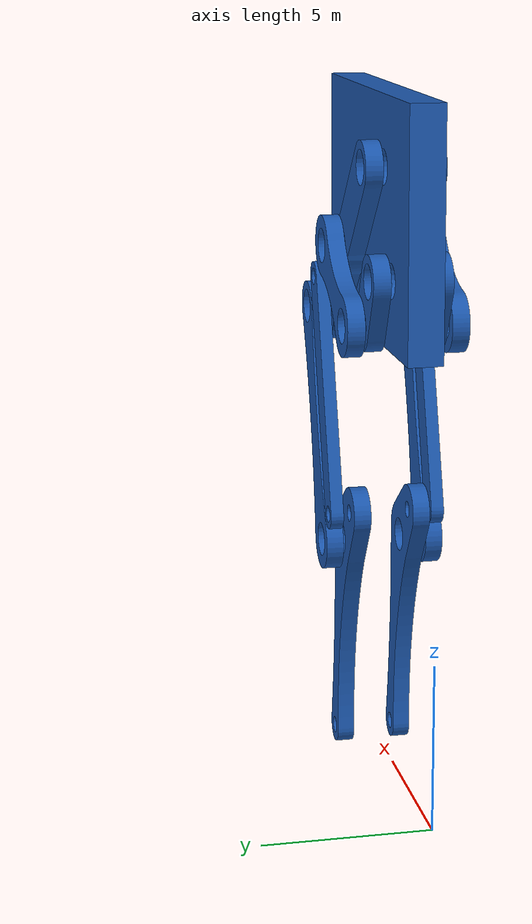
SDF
<?xml version='1.0'?>
<sdf version='1.6'>
  <world name='model'>
    <gravity>0 0 -9.8</gravity>
  <model name='oswald'>
    <link name='body'>
      <inertial>
        <mass>1</mass>
        <inertia>
          <ixx>0.166667</ixx>
          <ixy>0</ixy>
          <ixz>0</ixz>
          <iyy>0.166667</iyy>
          <iyz>0</iyz>
          <izz>0.166667</izz>
        </inertia>
        <pose frame=''>0 0 0 0 -0 0</pose>
      </inertial>
      <pose frame=''>-0.020683 -0.029068 0 0 -0 0</pose>
      <gravity>1</gravity>
      <self_collide>0</self_collide>
      <kinematic>0</kinematic>
      <enable_wind>0</enable_wind>
      <visual name='visual'>
        <pose frame=''>0 0 0 0 -0 0</pose>
        <geometry>
          <mesh>
            <uri>oswald_description/meshes/base_link.stl</uri>
            <scale>1 1 1</scale>
          </mesh>
        </geometry>
        <material>
          <ambient>1 0 0 1</ambient>
          <diffuse>0.109800 0.349000 0.694100 1</diffuse>
          <specular>0.1 0.1 0.1 1</specular>
          <emissive>0 0 0 0</emissive>
         </material>
        <transparency>0</transparency>
        <cast_shadows>1</cast_shadows>
      </visual>
      <collision name='collision'>
        <pose frame=''>0 0 0 0 -0 0</pose>
        <geometry>
          <mesh>
            <uri>oswald_description/meshes/base_link.stl</uri>
            <scale>1 1 1</scale>
          </mesh>
        </geometry>
        <surface>
          <friction>
            <torsional>
              <coefficient>1</coefficient>
              <patch_radius>0</patch_radius>
              <surface_radius>0</surface_radius>
              <use_patch_radius>1</use_patch_radius>
            </torsional>
          </friction>
          <bounce>
            <restitution_coefficient>0</restitution_coefficient>
            <threshold>1e+06</threshold>
          </bounce>
          <contact>
            <collide_without_contact>0</collide_without_contact>
            <collide_without_contact_bitmask>1</collide_without_contact_bitmask>
            <collide_bitmask>1</collide_bitmask>
          </contact>
        </surface>
      </collision>
    </link>
    <link name='right_connector'>
      <inertial>
        <mass>1</mass>
        <inertia>
          <ixx>0.166667</ixx>
          <ixy>0</ixy>
          <ixz>0</ixz>
          <iyy>0.166667</iyy>
          <iyz>0</iyz>
          <izz>0.166667</izz>
        </inertia>
        <pose frame=''>0 0 0 0 -0 0</pose>
      </inertial>
      <pose frame=''>0 0 0 0 -0 0</pose>
      <gravity>1</gravity>
      <self_collide>0</self_collide>
      <kinematic>0</kinematic>
      <enable_wind>0</enable_wind>
      <visual name='visual'>
        <pose frame=''>0 0 0 0 -0 0</pose>
        <geometry>
          <mesh>
            <uri>oswald_description/meshes/connector.stl</uri>
            <scale>1 1 1</scale>
          </mesh>
        </geometry>
        <material>
          <ambient>1 0 0 1</ambient>
          <diffuse>0.109800 0.349000 0.694100 1</diffuse>
          <specular>0.1 0.1 0.1 1</specular>
          <emissive>0 0 0 0</emissive>
         </material>
        <transparency>0</transparency>
        <cast_shadows>1</cast_shadows>
      </visual>
      <collision name='collision'>
        <pose frame=''>0 0 0 0 -0 0</pose>
        <geometry>
          <mesh>
            <uri>oswald_description/meshes/connector.stl</uri>
            <scale>1 1 1</scale>
          </mesh>
        </geometry>
        <surface>
          <friction>
            <torsional>
              <coefficient>1</coefficient>
              <patch_radius>0</patch_radius>
              <surface_radius>0</surface_radius>
              <use_patch_radius>1</use_patch_radius>
            </torsional>
          </friction>
          <bounce>
            <restitution_coefficient>0</restitution_coefficient>
            <threshold>1e+06</threshold>
          </bounce>
          <contact>
            <collide_without_contact>0</collide_without_contact>
            <collide_without_contact_bitmask>1</collide_without_contact_bitmask>
            <collide_bitmask>1</collide_bitmask>
          </contact>
        </surface>
      </collision>
    </link>
    <link name='left_recip'>
      <inertial>
        <mass>1</mass>
        <inertia>
          <ixx>0.166667</ixx>
          <ixy>0</ixy>
          <ixz>0</ixz>
          <iyy>0.166667</iyy>
          <iyz>0</iyz>
          <izz>0.166667</izz>
        </inertia>
        <pose frame=''>0 0 0 0 -0 0</pose>
      </inertial>
      <pose frame=''>0 1.75 0 0 -0 0</pose>
      <gravity>1</gravity>
      <self_collide>0</self_collide>
      <kinematic>0</kinematic>
      <enable_wind>0</enable_wind>
      <visual name='visual'>
        <pose frame=''>0 0 0 0 -0 0</pose>
        <geometry>
          <mesh>
            <uri>oswald_description/meshes/recip.stl</uri>
            <scale>1 1 1</scale>
          </mesh>
        </geometry>
        <material>
          <ambient>1 0 0 1</ambient>
          <diffuse>0.109800 0.349000 0.694100 1</diffuse>
          <specular>0.1 0.1 0.1 1</specular>
          <emissive>0 0 0 0</emissive>
         </material>
        <transparency>0</transparency>
        <cast_shadows>1</cast_shadows>
      </visual>
      <collision name='collision'>
        <pose frame=''>0 0 0 0 -0 0</pose>
        <geometry>
          <mesh>
            <uri>oswald_description/meshes/recip.stl</uri>
            <scale>1 1 1</scale>
          </mesh>
        </geometry>
        <surface>
          <friction>
            <torsional>
              <coefficient>1</coefficient>
              <patch_radius>0</patch_radius>
              <surface_radius>0</surface_radius>
              <use_patch_radius>1</use_patch_radius>
            </torsional>
          </friction>
          <bounce>
            <restitution_coefficient>0</restitution_coefficient>
            <threshold>1e+06</threshold>
          </bounce>
          <contact>
            <collide_without_contact>0</collide_without_contact>
            <collide_without_contact_bitmask>1</collide_without_contact_bitmask>
            <collide_bitmask>1</collide_bitmask>
          </contact>
        </surface>
      </collision>
    </link>
    <link name='left_shin'>
      <inertial>
        <mass>1</mass>
        <inertia>
          <ixx>0.166667</ixx>
          <ixy>0</ixy>
          <ixz>0</ixz>
          <iyy>0.166667</iyy>
          <iyz>0</iyz>
          <izz>0.166667</izz>
        </inertia>
        <pose frame=''>0 0 0 0 -0 0</pose>
      </inertial>
      <pose frame=''>0 3 0 0 -0 0</pose>
      <gravity>1</gravity>
      <self_collide>0</self_collide>
      <kinematic>0</kinematic>
      <enable_wind>0</enable_wind>
      <visual name='visual'>
        <pose frame=''>0 0 0 0 -0 0</pose>
        <geometry>
          <mesh>
            <uri>oswald_description/meshes/shin.stl</uri>
            <scale>1 1 1</scale>
          </mesh>
        </geometry>
        <material>
          <ambient>1 0 0 1</ambient>
          <diffuse>0.109800 0.349000 0.694100 1</diffuse>
          <specular>0.1 0.1 0.1 1</specular>
          <emissive>0 0 0 0</emissive>
         </material>
        <transparency>0</transparency>
        <cast_shadows>1</cast_shadows>
      </visual>
      <collision name='collision'>
        <pose frame=''>0 0 0 0 -0 0</pose>
        <geometry>
          <mesh>
            <uri>oswald_description/meshes/shin.stl</uri>
            <scale>1 1 1</scale>
          </mesh>
        </geometry>
        <surface>
          <friction>
            <torsional>
              <coefficient>1</coefficient>
              <patch_radius>0</patch_radius>
              <surface_radius>0</surface_radius>
              <use_patch_radius>1</use_patch_radius>
            </torsional>
          </friction>
          <bounce>
            <restitution_coefficient>0</restitution_coefficient>
            <threshold>1e+06</threshold>
          </bounce>
          <contact>
            <collide_without_contact>0</collide_without_contact>
            <collide_without_contact_bitmask>1</collide_without_contact_bitmask>
            <collide_bitmask>1</collide_bitmask>
          </contact>
        </surface>
      </collision>
    </link>
    <link name='right_recip'>
      <inertial>
        <mass>1</mass>
        <inertia>
          <ixx>0.166667</ixx>
          <ixy>0</ixy>
          <ixz>0</ixz>
          <iyy>0.166667</iyy>
          <iyz>0</iyz>
          <izz>0.166667</izz>
        </inertia>
        <pose frame=''>0 0 0 0 -0 0</pose>
      </inertial>
      <pose frame=''>0 0 0 0 -0 0</pose>
      <gravity>1</gravity>
      <self_collide>0</self_collide>
      <kinematic>0</kinematic>
      <enable_wind>0</enable_wind>
      <visual name='visual'>
        <pose frame=''>0 0 0 0 -0 0</pose>
        <geometry>
          <mesh>
            <uri>oswald_description/meshes/recip.stl</uri>
            <scale>1 1 1</scale>
          </mesh>
        </geometry>
        <material>
          <ambient>1 0 0 1</ambient>
          <diffuse>0.109800 0.349000 0.694100 1</diffuse>
          <specular>0.1 0.1 0.1 1</specular>
          <emissive>0 0 0 0</emissive>
         </material>
        <transparency>0</transparency>
        <cast_shadows>1</cast_shadows>
      </visual>
      <collision name='collision'>
        <pose frame=''>0 0 0 0 -0 0</pose>
        <geometry>
          <mesh>
            <uri>oswald_description/meshes/recip.stl</uri>
            <scale>1 1 1</scale>
          </mesh>
        </geometry>
        <surface>
          <friction>
            <torsional>
              <coefficient>1</coefficient>
              <patch_radius>0</patch_radius>
              <surface_radius>0</surface_radius>
              <use_patch_radius>1</use_patch_radius>
            </torsional>
          </friction>
          <bounce>
            <restitution_coefficient>0</restitution_coefficient>
            <threshold>1e+06</threshold>
          </bounce>
          <contact>
            <collide_without_contact>0</collide_without_contact>
            <collide_without_contact_bitmask>1</collide_without_contact_bitmask>
            <collide_bitmask>1</collide_bitmask>
          </contact>
        </surface>
      </collision>
    </link>
    <link name='right_thigh'>
      <inertial>
        <mass>1</mass>
        <inertia>
          <ixx>0.166667</ixx>
          <ixy>0</ixy>
          <ixz>0</ixz>
          <iyy>0.166667</iyy>
          <iyz>0</iyz>
          <izz>0.166667</izz>
        </inertia>
        <pose frame=''>0 0 0 0 -0 0</pose>
      </inertial>
      <pose frame=''>-0.020683 -0.029068 0 0 -0 0</pose>
      <gravity>1</gravity>
      <self_collide>0</self_collide>
      <kinematic>0</kinematic>
      <enable_wind>0</enable_wind>
      <visual name='visual'>
        <pose frame=''>0 0 0 0 -0 0</pose>
        <geometry>
          <mesh>
            <uri>oswald_description/meshes/thigh.stl</uri>
            <scale>1 1 1</scale>
          </mesh>
        </geometry>
        <material>
          <ambient>1 0 0 1</ambient>
          <diffuse>0.109800 0.349000 0.694100 1</diffuse>
          <specular>0.1 0.1 0.1 1</specular>
          <emissive>0 0 0 0</emissive>
         </material>
        <transparency>0</transparency>
        <cast_shadows>1</cast_shadows>
      </visual>
      <collision name='collision'>
        <pose frame=''>0 0 0 0 -0 0</pose>
        <geometry>
          <mesh>
            <uri>oswald_description/meshes/thigh.stl</uri>
            <scale>1 1 1</scale>
          </mesh>
        </geometry>
        <surface>
          <friction>
            <torsional>
              <coefficient>1</coefficient>
              <patch_radius>0</patch_radius>
              <surface_radius>0</surface_radius>
              <use_patch_radius>1</use_patch_radius>
            </torsional>
          </friction>
          <bounce>
            <restitution_coefficient>0</restitution_coefficient>
            <threshold>1e+06</threshold>
          </bounce>
          <contact>
            <collide_without_contact>0</collide_without_contact>
            <collide_without_contact_bitmask>1</collide_without_contact_bitmask>
            <collide_bitmask>1</collide_bitmask>
          </contact>
        </surface>
      </collision>
    </link>
    <link name='left_connector'>
      <inertial>
        <mass>1</mass>
        <inertia>
          <ixx>0.166667</ixx>
          <ixy>0</ixy>
          <ixz>0</ixz>
          <iyy>0.166667</iyy>
          <iyz>0</iyz>
          <izz>0.166667</izz>
        </inertia>
        <pose frame=''>0 0 0 0 -0 0</pose>
      </inertial>
      <pose frame=''>-0.020683 2.97093 0 0 -0 0</pose>
      <gravity>1</gravity>
      <self_collide>0</self_collide>
      <kinematic>0</kinematic>
      <enable_wind>0</enable_wind>
      <visual name='visual'>
        <pose frame=''>0 0 0 0 -0 0</pose>
        <geometry>
          <mesh>
            <uri>oswald_description/meshes/connector.stl</uri>
            <scale>1 1 1</scale>
          </mesh>
        </geometry>
        <material>
          <ambient>1 0 0 1</ambient>
          <diffuse>0.109800 0.349000 0.694100 1</diffuse>
          <specular>0.1 0.1 0.1 1</specular>
          <emissive>0 0 0 0</emissive>
         </material>
        <transparency>0</transparency>
        <cast_shadows>1</cast_shadows>
      </visual>
      <collision name='collision'>
        <pose frame=''>0 0 0 0 -0 0</pose>
        <geometry>
          <mesh>
            <uri>oswald_description/meshes/connector.stl</uri>
            <scale>1 1 1</scale>
          </mesh>
        </geometry>
        <surface>
          <friction>
            <torsional>
              <coefficient>1</coefficient>
              <patch_radius>0</patch_radius>
              <surface_radius>0</surface_radius>
              <use_patch_radius>1</use_patch_radius>
            </torsional>
          </friction>
          <bounce>
            <restitution_coefficient>0</restitution_coefficient>
            <threshold>1e+06</threshold>
          </bounce>
          <contact>
            <collide_without_contact>0</collide_without_contact>
            <collide_without_contact_bitmask>1</collide_without_contact_bitmask>
            <collide_bitmask>1</collide_bitmask>
          </contact>
        </surface>
      </collision>
    </link>
    <link name='left_4bar'>
      <inertial>
        <mass>1</mass>
        <inertia>
          <ixx>0.166667</ixx>
          <ixy>0</ixy>
          <ixz>0</ixz>
          <iyy>0.166667</iyy>
          <iyz>0</iyz>
          <izz>0.166667</izz>
        </inertia>
        <pose frame=''>0 0 0 0 -0 0</pose>
      </inertial>
      <pose frame=''>0 3 0 0 -0 0</pose>
      <gravity>1</gravity>
      <self_collide>0</self_collide>
      <kinematic>0</kinematic>
      <enable_wind>0</enable_wind>
      <visual name='visual'>
        <pose frame=''>0 0 0 0 -0 0</pose>
        <geometry>
          <mesh>
            <uri>oswald_description/meshes/4bar.stl</uri>
            <scale>1 1 1</scale>
          </mesh>
        </geometry>
        <material>
          <ambient>1 0 0 1</ambient>
          <diffuse>0.109800 0.349000 0.694100 1</diffuse>
          <specular>0.1 0.1 0.1 1</specular>
          <emissive>0 0 0 0</emissive>
         </material>
        <transparency>0</transparency>
        <cast_shadows>1</cast_shadows>
      </visual>
      <collision name='collision'>
        <pose frame=''>0 0 0 0 -0 0</pose>
        <geometry>
          <mesh>
            <uri>oswald_description/meshes/4bar.stl</uri>
            <scale>1 1 1</scale>
          </mesh>
        </geometry>
        <surface>
          <friction>
            <torsional>
              <coefficient>1</coefficient>
              <patch_radius>0</patch_radius>
              <surface_radius>0</surface_radius>
              <use_patch_radius>1</use_patch_radius>
            </torsional>
          </friction>
          <bounce>
            <restitution_coefficient>0</restitution_coefficient>
            <threshold>1e+06</threshold>
          </bounce>
          <contact>
            <collide_without_contact>0</collide_without_contact>
            <collide_without_contact_bitmask>1</collide_without_contact_bitmask>
            <collide_bitmask>1</collide_bitmask>
          </contact>
        </surface>
      </collision>
    </link>
    <link name='right_shin'>
      <inertial>
        <mass>1</mass>
        <inertia>
          <ixx>0.166667</ixx>
          <ixy>0</ixy>
          <ixz>0</ixz>
          <iyy>0.166667</iyy>
          <iyz>0</iyz>
          <izz>0.166667</izz>
        </inertia>
        <pose frame=''>0 0 0 0 -0 0</pose>
      </inertial>
      <pose frame=''>0 0 0 0 -0 0</pose>
      <gravity>1</gravity>
      <self_collide>0</self_collide>
      <kinematic>0</kinematic>
      <enable_wind>0</enable_wind>
      <visual name='visual'>
        <pose frame=''>0 0 0 0 -0 0</pose>
        <geometry>
          <mesh>
            <uri>oswald_description/meshes/shin.stl</uri>
            <scale>1 1 1</scale>
          </mesh>
        </geometry>
        <material>
          <ambient>1 0 0 1</ambient>
          <diffuse>0.109800 0.349000 0.694100 1</diffuse>
          <specular>0.1 0.1 0.1 1</specular>
          <emissive>0 0 0 0</emissive>
         </material>
        <transparency>0</transparency>
        <cast_shadows>1</cast_shadows>
      </visual>
      <collision name='collision'>
        <pose frame=''>0 0 0 0 -0 0</pose>
        <geometry>
          <mesh>
            <uri>oswald_description/meshes/shin.stl</uri>
            <scale>1 1 1</scale>
          </mesh>
        </geometry>
        <surface>
          <friction>
            <torsional>
              <coefficient>1</coefficient>
              <patch_radius>0</patch_radius>
              <surface_radius>0</surface_radius>
              <use_patch_radius>1</use_patch_radius>
            </torsional>
          </friction>
          <bounce>
            <restitution_coefficient>0</restitution_coefficient>
            <threshold>1e+06</threshold>
          </bounce>
          <contact>
            <collide_without_contact>0</collide_without_contact>
            <collide_without_contact_bitmask>1</collide_without_contact_bitmask>
            <collide_bitmask>1</collide_bitmask>
          </contact>
        </surface>
      </collision>
    </link>
    <link name='left_thigh'>
      <inertial>
        <mass>1</mass>
        <inertia>
          <ixx>0.166667</ixx>
          <ixy>0</ixy>
          <ixz>0</ixz>
          <iyy>0.166667</iyy>
          <iyz>0</iyz>
          <izz>0.166667</izz>
        </inertia>
        <pose frame=''>0 0 0 0 -0 0</pose>
      </inertial>
      <pose frame=''>0 1.75 0 0 -0 0</pose>
      <gravity>1</gravity>
      <self_collide>0</self_collide>
      <kinematic>0</kinematic>
      <enable_wind>0</enable_wind>
      <visual name='visual'>
        <pose frame=''>0 0 0 0 -0 0</pose>
        <geometry>
          <mesh>
            <uri>oswald_description/meshes/thigh.stl</uri>
            <scale>1 1 1</scale>
          </mesh>
        </geometry>
        <material>
          <ambient>1 0 0 1</ambient>
          <diffuse>0.109800 0.349000 0.694100 1</diffuse>
          <specular>0.1 0.1 0.1 1</specular>
          <emissive>0 0 0 0</emissive>
         </material>
        <transparency>0</transparency>
        <cast_shadows>1</cast_shadows>
      </visual>
      <collision name='collision'>
        <pose frame=''>0 0 0 0 -0 0</pose>
        <geometry>
          <mesh>
            <uri>oswald_description/meshes/thigh.stl</uri>
            <scale>1 1 1</scale>
          </mesh>
        </geometry>
        <surface>
          <friction>
            <torsional>
              <coefficient>1</coefficient>
              <patch_radius>0</patch_radius>
              <surface_radius>0</surface_radius>
              <use_patch_radius>1</use_patch_radius>
            </torsional>
          </friction>
          <bounce>
            <restitution_coefficient>0</restitution_coefficient>
            <threshold>1e+06</threshold>
          </bounce>
          <contact>
            <collide_without_contact>0</collide_without_contact>
            <collide_without_contact_bitmask>1</collide_without_contact_bitmask>
            <collide_bitmask>1</collide_bitmask>
          </contact>
        </surface>
      </collision>
    </link>
    <link name='right_4bar'>
      <inertial>
        <mass>1</mass>
        <inertia>
          <ixx>0.166667</ixx>
          <ixy>0</ixy>
          <ixz>0</ixz>
          <iyy>0.166667</iyy>
          <iyz>0</iyz>
          <izz>0.166667</izz>
        </inertia>
        <pose frame=''>0 0 0 0 -0 0</pose>
      </inertial>
      <pose frame=''>0 0 0 0 -0 0</pose>
      <gravity>1</gravity>
      <self_collide>0</self_collide>
      <kinematic>0</kinematic>
      <enable_wind>0</enable_wind>
      <visual name='visual'>
        <pose frame=''>0 0 0 0 -0 0</pose>
        <geometry>
          <mesh>
            <uri>oswald_description/meshes/4bar.stl</uri>
            <scale>1 1 1</scale>
          </mesh>
        </geometry>
        <material>
          <ambient>1 0 0 1</ambient>
          <diffuse>0.109800 0.349000 0.694100 1</diffuse>
          <specular>0.1 0.1 0.1 1</specular>
          <emissive>0 0 0 0</emissive>
         </material>
        <transparency>0</transparency>
        <cast_shadows>1</cast_shadows>
      </visual>
      <collision name='collision'>
        <pose frame=''>0 0 0 0 -0 0</pose>
        <geometry>
          <mesh>
            <uri>oswald_description/meshes/4bar.stl</uri>
            <scale>1 1 1</scale>
          </mesh>
        </geometry>
        <surface>
          <friction>
            <torsional>
              <coefficient>1</coefficient>
              <patch_radius>0</patch_radius>
              <surface_radius>0</surface_radius>
              <use_patch_radius>1</use_patch_radius>
            </torsional>
          </friction>
          <bounce>
            <restitution_coefficient>0</restitution_coefficient>
            <threshold>1e+06</threshold>
          </bounce>
          <contact>
            <collide_without_contact>0</collide_without_contact>
            <collide_without_contact_bitmask>1</collide_without_contact_bitmask>
            <collide_bitmask>1</collide_bitmask>
          </contact>
        </surface>
      </collision>
    </link>
    <link name='left_ankle'>
      <inertial>
        <mass>1</mass>
        <inertia>
          <ixx>0.166667</ixx>
          <ixy>0</ixy>
          <ixz>0</ixz>
          <iyy>0.166667</iyy>
          <iyz>0</iyz>
          <izz>0.166667</izz>
        </inertia>
        <pose frame=''>0 0 0 0 -0 0</pose>
      </inertial>
      <pose frame=''>0 1.75 0 0 -0 0</pose>
      <gravity>1</gravity>
      <self_collide>0</self_collide>
      <kinematic>0</kinematic>
      <enable_wind>0</enable_wind>
      <visual name='visual'>
        <pose frame=''>0 0 0 0 -0 0</pose>
        <geometry>
          <mesh>
            <uri>oswald_description/meshes/foot thing.stl</uri>
            <scale>1 1 1</scale>
          </mesh>
        </geometry>
        <material>
          <ambient>1 0 0 1</ambient>
          <diffuse>0.109800 0.349000 0.694100 1</diffuse>
          <specular>0.1 0.1 0.1 1</specular>
          <emissive>0 0 0 0</emissive>
         </material>
        <transparency>0</transparency>
        <cast_shadows>1</cast_shadows>
      </visual>
      <collision name='collision'>
        <pose frame=''>0 0 0 0 -0 0</pose>
        <geometry>
          <mesh>
            <uri>oswald_description/meshes/foot thing.stl</uri>
            <scale>1 1 1</scale>
          </mesh>
        </geometry>
        <surface>
          <friction>
            <torsional>
              <coefficient>1</coefficient>
              <patch_radius>0</patch_radius>
              <surface_radius>0</surface_radius>
              <use_patch_radius>1</use_patch_radius>
            </torsional>
          </friction>
          <bounce>
            <restitution_coefficient>0</restitution_coefficient>
            <threshold>1e+06</threshold>
          </bounce>
          <contact>
            <collide_without_contact>0</collide_without_contact>
            <collide_without_contact_bitmask>1</collide_without_contact_bitmask>
            <collide_bitmask>1</collide_bitmask>
          </contact>
        </surface>
      </collision>
    </link>
    <link name='right_ankle'>
      <inertial>
        <mass>1</mass>
        <inertia>
          <ixx>0.166667</ixx>
          <ixy>0</ixy>
          <ixz>0</ixz>
          <iyy>0.166667</iyy>
          <iyz>0</iyz>
          <izz>0.166667</izz>
        </inertia>
        <pose frame=''>0 0 0 0 -0 0</pose>
      </inertial>
      <pose frame=''>0 0 0 0 -0 0</pose>
      <gravity>1</gravity>
      <self_collide>0</self_collide>
      <kinematic>0</kinematic>
      <enable_wind>0</enable_wind>
      <visual name='visual'>
        <pose frame=''>0 0 0 0 -0 0</pose>
        <geometry>
          <mesh>
            <uri>oswald_description/meshes/foot thing.stl</uri>
            <scale>1 1 1</scale>
          </mesh>
        </geometry>
        <material>
          <ambient>1 0 0 1</ambient>
          <diffuse>0.109800 0.349000 0.694100 1</diffuse>
          <specular>0.1 0.1 0.1 1</specular>
          <emissive>0 0 0 0</emissive>
         </material>
        <transparency>0</transparency>
        <cast_shadows>1</cast_shadows>
      </visual>
      <collision name='collision'>
        <pose frame=''>0 0 0 0 -0 0</pose>
        <geometry>
          <mesh>
            <uri>oswald_description/meshes/foot thing.stl</uri>
            <scale>1 1 1</scale>
          </mesh>
        </geometry>
        <surface>
          <friction>
            <torsional>
              <coefficient>1</coefficient>
              <patch_radius>0</patch_radius>
              <surface_radius>0</surface_radius>
              <use_patch_radius>1</use_patch_radius>
            </torsional>
          </friction>
          <bounce>
            <restitution_coefficient>0</restitution_coefficient>
            <threshold>1e+06</threshold>
          </bounce>
          <contact>
            <collide_without_contact>0</collide_without_contact>
            <collide_without_contact_bitmask>1</collide_without_contact_bitmask>
            <collide_bitmask>1</collide_bitmask>
          </contact>
        </surface>
      </collision>
    </link>
    <joint name='body_left_recip' type='revolute'>
      <parent>body</parent>
      <child>left_recip</child>
      <pose frame=''>1.5 1 15.75 0 -0 0</pose>
      <axis>
        <xyz>0 1 0</xyz>
        <use_parent_model_frame>0</use_parent_model_frame>
        <limit>
          <lower>-1.79769e+308</lower>
          <upper>1.79769e+308</upper>
          <effort>-1</effort>
          <velocity>-1</velocity>
        </limit>
        <dynamics>
          <spring_reference>0</spring_reference>
          <spring_stiffness>0</spring_stiffness>
          <damping>0</damping>
          <friction>0</friction>
        </dynamics>
      </axis>
      <physics>
        <ode>
          <limit>
            <cfm>0</cfm>
            <erp>0.2</erp>
          </limit>
          <suspension>
            <cfm>0</cfm>
            <erp>0.2</erp>
          </suspension>
        </ode>
      </physics>
    </joint>
    <joint name='body_left_thigh' type='revolute'>
      <parent>body</parent>
      <child>left_thigh</child>
      <pose frame=''>2.5 0 18.75 0 -0 0</pose>
      <axis>
        <xyz>1 0 0</xyz>
        <use_parent_model_frame>0</use_parent_model_frame>
        <limit>
          <lower>-1.79769e+308</lower>
          <upper>1.79769e+308</upper>
          <effort>-1</effort>
          <velocity>-1</velocity>
        </limit>
        <dynamics>
          <spring_reference>0</spring_reference>
          <spring_stiffness>0</spring_stiffness>
          <damping>0</damping>
          <friction>0</friction>
        </dynamics>
      </axis>
      <physics>
        <ode>
          <limit>
            <cfm>0</cfm>
            <erp>0.2</erp>
          </limit>
          <suspension>
            <cfm>0</cfm>
            <erp>0.2</erp>
          </suspension>
        </ode>
      </physics>
    </joint>
    <joint name='body_right_recip' type='revolute'>
      <parent>body</parent>
      <child>right_recip</child>
      <pose frame=''>1.5 0 15.75 0 -0 0</pose>
      <axis>
        <xyz>0 1 0</xyz>
        <use_parent_model_frame>0</use_parent_model_frame>
        <limit>
          <lower>-1.79769e+308</lower>
          <upper>1.79769e+308</upper>
          <effort>-1</effort>
          <velocity>-1</velocity>
        </limit>
        <dynamics>
          <spring_reference>0</spring_reference>
          <spring_stiffness>0</spring_stiffness>
          <damping>0</damping>
          <friction>0</friction>
        </dynamics>
      </axis>
      <physics>
        <ode>
          <limit>
            <cfm>0</cfm>
            <erp>0.2</erp>
          </limit>
          <suspension>
            <cfm>0</cfm>
            <erp>0.2</erp>
          </suspension>
        </ode>
      </physics>
    </joint>
    <joint name='body_right_thigh' type='revolute'>
      <parent>body</parent>
      <child>right_thigh</child>
      <pose frame=''>2.5 0 18.75 0 -0 0</pose>
      <axis>
        <xyz>0 1 0</xyz>
        <use_parent_model_frame>0</use_parent_model_frame>
        <limit>
          <lower>-1.79769e+308</lower>
          <upper>1.79769e+308</upper>
          <effort>-1</effort>
          <velocity>-1</velocity>
        </limit>
        <dynamics>
          <spring_reference>0</spring_reference>
          <spring_stiffness>0</spring_stiffness>
          <damping>0</damping>
          <friction>0</friction>
        </dynamics>
      </axis>
      <physics>
        <ode>
          <limit>
            <cfm>0</cfm>
            <erp>0.2</erp>
          </limit>
          <suspension>
            <cfm>0</cfm>
            <erp>0.2</erp>
          </suspension>
        </ode>
      </physics>
    </joint>
    <joint name='left_recip_connector' type='revolute'>
      <parent>left_recip</parent>
      <child>left_connector</child>
      <pose frame=''>2.179 0 14.412 0 -0 0</pose>
      <axis>
        <xyz>1 0 0</xyz>
        <use_parent_model_frame>0</use_parent_model_frame>
        <limit>
          <lower>-1.79769e+308</lower>
          <upper>1.79769e+308</upper>
          <effort>-1</effort>
          <velocity>-1</velocity>
        </limit>
        <dynamics>
          <spring_reference>0</spring_reference>
          <spring_stiffness>0</spring_stiffness>
          <damping>0</damping>
          <friction>0</friction>
        </dynamics>
      </axis>
      <physics>
        <ode>
          <limit>
            <cfm>0</cfm>
            <erp>0.2</erp>
          </limit>
          <suspension>
            <cfm>0</cfm>
            <erp>0.2</erp>
          </suspension>
        </ode>
      </physics>
    </joint>
    <joint name='left_thigh_connector' type='revolute'>
      <parent>left_thigh</parent>
      <child>left_connector</child>
      <pose frame=''>4.931 0 16.23 0 -0 0</pose>
      <axis>
        <xyz>0 1 0</xyz>
        <use_parent_model_frame>0</use_parent_model_frame>
        <limit>
          <lower>-1.79769e+308</lower>
          <upper>1.79769e+308</upper>
          <effort>-1</effort>
          <velocity>-1</velocity>
        </limit>
        <dynamics>
          <spring_reference>0</spring_reference>
          <spring_stiffness>0</spring_stiffness>
          <damping>0</damping>
          <friction>0</friction>
        </dynamics>
      </axis>
      <physics>
        <ode>
          <limit>
            <cfm>0</cfm>
            <erp>0.2</erp>
          </limit>
          <suspension>
            <cfm>0</cfm>
            <erp>0.2</erp>
          </suspension>
        </ode>
      </physics>
    </joint>
    <joint name='left_shin_ankle' type='revolute'>
      <parent>left_shin</parent>
      <child>left_ankle</child>
      <pose frame=''>4.931 0 7.392 0 -0 0</pose>
      <axis>
        <xyz>0 1 0</xyz>
        <use_parent_model_frame>0</use_parent_model_frame>
        <limit>
          <lower>-1.79769e+308</lower>
          <upper>1.79769e+308</upper>
          <effort>-1</effort>
          <velocity>-1</velocity>
        </limit>
        <dynamics>
          <spring_reference>0</spring_reference>
          <spring_stiffness>0</spring_stiffness>
          <damping>0</damping>
        </dynamics>
      </axis>
      <physics>
        <ode>
          <limit>
            <cfm>0</cfm>
            <erp>0.2</erp>
          </limit>
          <suspension>
            <cfm>0</cfm>
            <erp>0.2</erp>
          </suspension>
        </ode>
      </physics>
    </joint>
    <joint name='left_4bar_ankle' type='revolute'>
      <parent>left_4bar</parent>
      <child>left_ankle</child>
      <pose frame=''>3.889 0 8.471 0 -0 0</pose>
      <axis>
        <xyz>0 1 0</xyz>
        <use_parent_model_frame>0</use_parent_model_frame>
        <limit>
          <lower>-1.79769e+308</lower>
          <upper>1.79769e+308</upper>
          <effort>-1</effort>
          <velocity>-1</velocity>
        </limit>
        <dynamics>
          <spring_reference>0</spring_reference>
          <spring_stiffness>0</spring_stiffness>
          <damping>0</damping>
        </dynamics>
      </axis>
      <physics>
        <ode>
          <limit>
            <cfm>0</cfm>
            <erp>0.2</erp>
          </limit>
          <suspension>
            <cfm>0</cfm>
            <erp>0.2</erp>
          </suspension>
        </ode>
      </physics>
    </joint>
    <joint name='left_thigh_shin' type='revolute'>
      <parent>left_thigh</parent>
      <child>left_shin</child>
      <pose frame=''>7.025 0 14.074 0 -0 0</pose>
      <axis>
        <xyz>0 1 0</xyz>
        <use_parent_model_frame>0</use_parent_model_frame>
        <limit>
          <lower>-1.79769e+308</lower>
          <upper>1.79769e+308</upper>
          <effort>-1</effort>
          <velocity>-1</velocity>
        </limit>
        <dynamics>
          <spring_reference>0</spring_reference>
          <spring_stiffness>0</spring_stiffness>
          <damping>0</damping>
          <friction>0</friction>
        </dynamics>
      </axis>
      <physics>
        <ode>
          <limit>
            <cfm>0</cfm>
            <erp>0.2</erp>
          </limit>
          <suspension>
            <cfm>0</cfm>
            <erp>0.2</erp>
          </suspension>
        </ode>
      </physics>
    </joint>
    <joint name='left_thigh_4bar' type='revolute'>
      <parent>left_thigh</parent>
      <child>left_4bar</child>
      <pose frame=''>5.973 0 15.153 0 -0 0</pose>
      <axis>
        <xyz>0 1 0</xyz>
        <use_parent_model_frame>0</use_parent_model_frame>
        <limit>
          <lower>-1.79769e+308</lower>
          <upper>1.79769e+308</upper>
          <effort>-1</effort>
          <velocity>-1</velocity>
        </limit>
        <dynamics>
          <spring_reference>0</spring_reference>
          <spring_stiffness>0</spring_stiffness>
          <damping>0</damping>
          <friction>0</friction>
        </dynamics>
      </axis>
      <physics>
        <ode>
          <limit>
            <cfm>0</cfm>
            <erp>0.2</erp>
          </limit>
          <suspension>
            <cfm>0</cfm>
            <erp>0.2</erp>
          </suspension>
        </ode>
      </physics>
    </joint>
    <joint name='right_4bar_ankle' type='revolute'>
      <parent>right_4bar</parent>
      <child>right_ankle</child>
      <pose frame=''>3.889 0 8.471 0 -0 0</pose>
      <axis>
        <xyz>0 1 0</xyz>
        <use_parent_model_frame>0</use_parent_model_frame>
        <limit>
          <lower>-1.79769e+308</lower>
          <upper>1.79769e+308</upper>
          <effort>-1</effort>
          <velocity>-1</velocity>
        </limit>
        <dynamics>
          <spring_reference>0</spring_reference>
          <spring_stiffness>0</spring_stiffness>
          <damping>0</damping>
          <friction>0</friction>
        </dynamics>
      </axis>
      <physics>
        <ode>
          <limit>
            <cfm>0</cfm>
            <erp>0.2</erp>
          </limit>
          <suspension>
            <cfm>0</cfm>
            <erp>0.2</erp>
          </suspension>
        </ode>
      </physics>
    </joint>
    <joint name='right_recip_connector' type='revolute'>
      <parent>right_recip</parent>
      <child>right_connector</child>
      <pose frame=''>2.179 0 14.412 0 -0 0</pose>
      <axis>
        <xyz>0 1 0</xyz>
        <use_parent_model_frame>0</use_parent_model_frame>
        <limit>
          <lower>-1.79769e+308</lower>
          <upper>1.79769e+308</upper>
          <effort>-1</effort>
          <velocity>-1</velocity>
        </limit>
        <dynamics>
          <spring_reference>0</spring_reference>
          <spring_stiffness>0</spring_stiffness>
          <damping>0</damping>
          <friction>0</friction>
        </dynamics>
      </axis>
      <physics>
        <ode>
          <limit>
            <cfm>0</cfm>
            <erp>0.2</erp>
          </limit>
          <suspension>
            <cfm>0</cfm>
            <erp>0.2</erp>
          </suspension>
        </ode>
      </physics>
    </joint>
    <joint name='right_shin_ankle' type='revolute'>
      <parent>right_shin</parent>
      <child>right_ankle</child>
      <pose frame=''>4.931 0 7.392 0 -0 0</pose>
      <axis>
        <xyz>0 1 0</xyz>
        <use_parent_model_frame>0</use_parent_model_frame>
        <limit>
          <lower>-1.79769e+308</lower>
          <upper>1.79769e+308</upper>
          <effort>-1</effort>
          <velocity>-1</velocity>
        </limit>
        <dynamics>
          <spring_reference>0</spring_reference>
          <spring_stiffness>0</spring_stiffness>
          <damping>0</damping>
          <friction>0</friction>
        </dynamics>
      </axis>
      <physics>
        <ode>
          <limit>
            <cfm>0</cfm>
            <erp>0.2</erp>
          </limit>
          <suspension>
            <cfm>0</cfm>
            <erp>0.2</erp>
          </suspension>
        </ode>
      </physics>
    </joint>
    <joint name='right_thigh_4bar' type='revolute'>
      <parent>right_thigh</parent>
      <child>right_4bar</child>
      <pose frame=''>5.973 0 15.153 0 -0 0</pose>
      <axis>
        <xyz>0 1 0</xyz>
        <use_parent_model_frame>0</use_parent_model_frame>
        <limit>
          <lower>-1.79769e+308</lower>
          <upper>1.79769e+308</upper>
          <effort>-1</effort>
          <velocity>-1</velocity>
        </limit>
        <dynamics>
          <spring_reference>0</spring_reference>
          <spring_stiffness>0</spring_stiffness>
          <damping>0</damping>
          <friction>0</friction>
        </dynamics>
      </axis>
      <physics>
        <ode>
          <limit>
            <cfm>0</cfm>
            <erp>0.2</erp>
          </limit>
          <suspension>
            <cfm>0</cfm>
            <erp>0.2</erp>
          </suspension>
        </ode>
      </physics>
    </joint>
    <joint name='right_thigh_connector' type='revolute'>
      <parent>right_thigh</parent>
      <child>right_connector</child>
      <pose frame=''>4.931 0 16.232 0 -0 0</pose>
      <axis>
        <xyz>0 1 0</xyz>
        <use_parent_model_frame>0</use_parent_model_frame>
        <limit>
          <lower>-1.79769e+308</lower>
          <upper>1.79769e+308</upper>
          <effort>-1</effort>
          <velocity>-1</velocity>
        </limit>
        <dynamics>
          <spring_reference>0</spring_reference>
          <spring_stiffness>0</spring_stiffness>
          <damping>0</damping>
          <friction>0</friction>
        </dynamics>
      </axis>
      <physics>
        <ode>
          <limit>
            <cfm>0</cfm>
            <erp>0.2</erp>
          </limit>
          <suspension>
            <cfm>0</cfm>
            <erp>0.2</erp>
          </suspension>
        </ode>
      </physics>
    </joint>
    <joint name='right_thigh_shin' type='revolute'>
      <parent>right_thigh</parent>
      <child>right_shin</child>
      <pose frame=''>7.025 0 14.074 0 -0 0</pose>
      <axis>
        <xyz>0 1 0</xyz>
        <use_parent_model_frame>0</use_parent_model_frame>
        <limit>
          <lower>-1.79769e+308</lower>
          <upper>1.79769e+308</upper>
          <effort>-1</effort>
          <velocity>-1</velocity>
        </limit>
        <dynamics>
          <spring_reference>0</spring_reference>
          <spring_stiffness>0</spring_stiffness>
          <damping>0</damping>
          <friction>0</friction>
        </dynamics>
      </axis>
      <physics>
        <ode>
          <limit>
            <cfm>0</cfm>
            <erp>0.2</erp>
          </limit>
          <suspension>
            <cfm>0</cfm>
            <erp>0.2</erp>
          </suspension>
        </ode>
      </physics>
    </joint>
    <static>0</static>
    <allow_auto_disable>1</allow_auto_disable>
  </model>
  </world>
</sdf>
